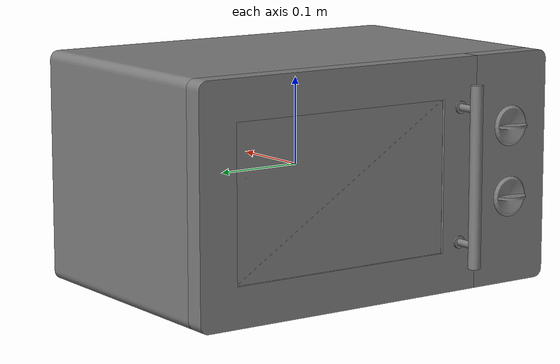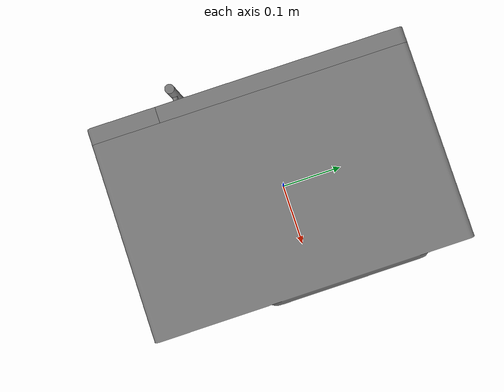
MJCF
<mujoco model="partnet_dc5c91c8c01b1c8c506c648223cdabe9">
    <compiler angle="radian" />
    <size njmax="500" nconmax="100" />
    <asset>
        <mesh name="original-12" file="original-12.stl" scale="0.3 0.3 0.3" />
        <mesh name="original-7" file="original-7.stl" scale="0.3 0.3 0.3" />
        <mesh name="original-9" file="original-9.stl" scale="0.3 0.3 0.3" />
        <mesh name="original-11" file="original-11.stl" scale="0.3 0.3 0.3" />
        <mesh name="original-10" file="original-10.stl" scale="0.3 0.3 0.3" />
        <mesh name="original-4" file="original-4.stl" scale="0.3 0.3 0.3" />
        <mesh name="original-3" file="original-3.stl" scale="0.3 0.3 0.3" />
        <mesh name="original-5" file="original-5.stl" scale="0.3 0.3 0.3" />
        <mesh name="new-4" file="new-4.stl" scale="0.3 0.3 0.3" />
        <mesh name="new-3" file="new-3.stl" scale="0.3 0.3 0.3" />
        <mesh name="new-2" file="new-2.stl" scale="0.3 0.3 0.3" />
        <mesh name="new-1" file="new-1.stl" scale="0.3 0.3 0.3" />
        <mesh name="new-0" file="new-0.stl" scale="0.3 0.3 0.3" />
    </asset>
    <worldbody>
    <body>
        <body name="object">
            <geom quat="0.5 0.5 -0.5 -0.5" type="mesh" group="0" mesh="original-5" conaffinity="0" contype="0" />
            <geom quat="0.5 0.5 -0.5 -0.5" type="mesh" group="0" mesh="new-4" conaffinity="0" contype="0" />
            <geom quat="0.5 0.5 -0.5 -0.5" type="mesh" group="0" mesh="new-3" conaffinity="0" contype="0" />
            <geom quat="0.5 0.5 -0.5 -0.5" type="mesh" group="0" mesh="new-2" conaffinity="0" contype="0" />
            <geom quat="0.5 0.5 -0.5 -0.5" type="mesh" group="0" mesh="new-1" conaffinity="0" contype="0" />
            <geom quat="0.5 0.5 -0.5 -0.5" type="mesh" group="0" mesh="new-0" conaffinity="0" contype="0" />
            <body name="link_0" pos="-0.038013929999999994 0.06502698 0.03917835" quat="0.5 0.5 -0.5 -0.5">
                <inertial pos="0.17344739999999997 -0.1320024 0.0137811" quat="0.000151834 0.70444 -5.77531e-05 0.709764" mass="88.1961" diaginertia="15.7799 10.5248 5.40535" />
                <joint name="joint_0" pos="0.0 0.0 0.0" axis="0 -1 0" limited="true" range="0 1.5708" />
                <geom pos="0.06502698 -0.03917835 -0.038013929999999994" type="mesh" group="0" mesh="original-12" />
                <geom pos="0.06502698 -0.03917835 -0.038013929999999994" type="mesh" group="0" mesh="original-7" />
                <geom pos="0.06502698 -0.03917835 -0.038013929999999994" type="mesh" group="0" mesh="original-9" name="panel" />
                <geom pos="0.06502698 -0.03917835 -0.038013929999999994" type="mesh" group="0" mesh="original-11" />
                <geom pos="0.06502698 -0.03917835 -0.038013929999999994" type="mesh" group="0" mesh="original-10" />
            </body>
            <body name="link_1" pos="-0.051863849999999996 -0.05663465999999999 -0.01017216" quat="0.5 0.5 -0.5 -0.5">
                <inertial pos="-0.0009588029999999999 2.6055629999999997e-05 -0.0146559" quat="0 0.707107 0 0.707107" mass="0.481512" diaginertia="0.000936918 0.00059046 0.000484734" />
                <joint name="joint_1" pos="0.0 0.0 0.0" axis="0 0 1" />
                <geom pos="-0.05663465999999999 0.01017216 -0.051863849999999996" type="mesh" group="0" mesh="original-4" />
            </body>
            <body name="link_2" pos="-0.05164019999999999 -0.05649425999999999 0.014073569999999999" quat="0.5 0.5 -0.5 -0.5">
                <inertial pos="-0.0004908029999999999 0.000429603 -0.013910309999999999" quat="0 0.707107 0 0.707107" mass="0.481513" diaginertia="0.000936919 0.00059046 0.000484735" />
                <joint name="joint_2" pos="0.0 0.0 0.0" axis="0 0 1" />
                <geom pos="-0.05649425999999999 -0.014073569999999999 -0.05164019999999999" type="mesh" group="0" mesh="original-3" />
            </body>
        </body>
    <site name="bottom_site" pos="0 0 -0.3" rgba="0 0 0 0" size="0.005" />
    <site name="top_site" pos="0 0 0.3" rgba="0 0 0 0" size="0.005" />
    <site name="horizontal_radius_site" pos="0.3 0 0" rgba="0 0 0 0" size="0.1" />
    </body>
    </worldbody>
</mujoco>
